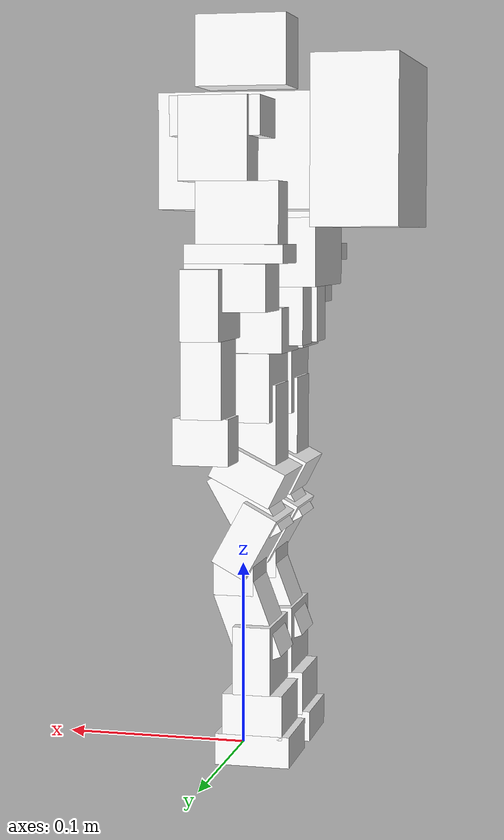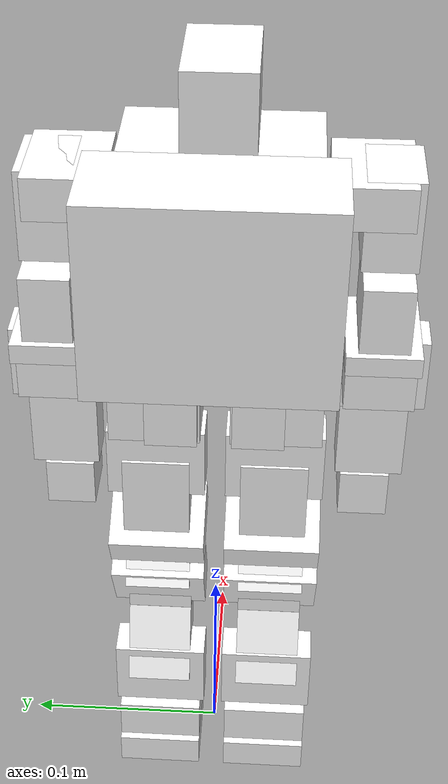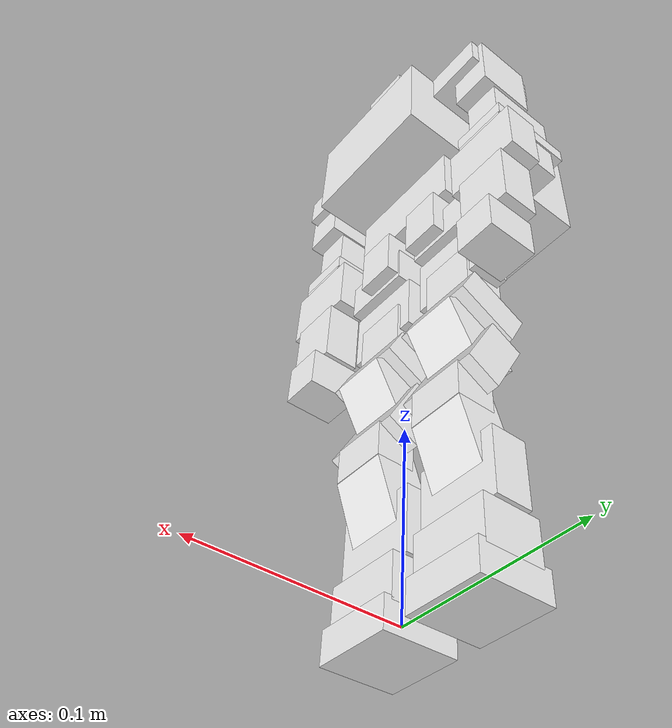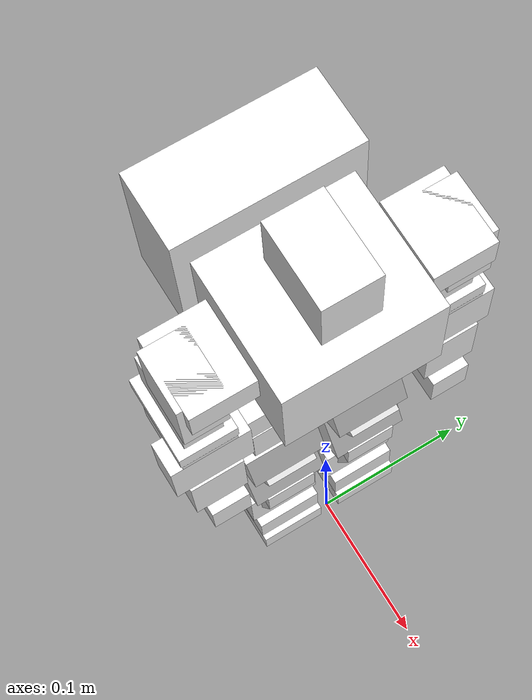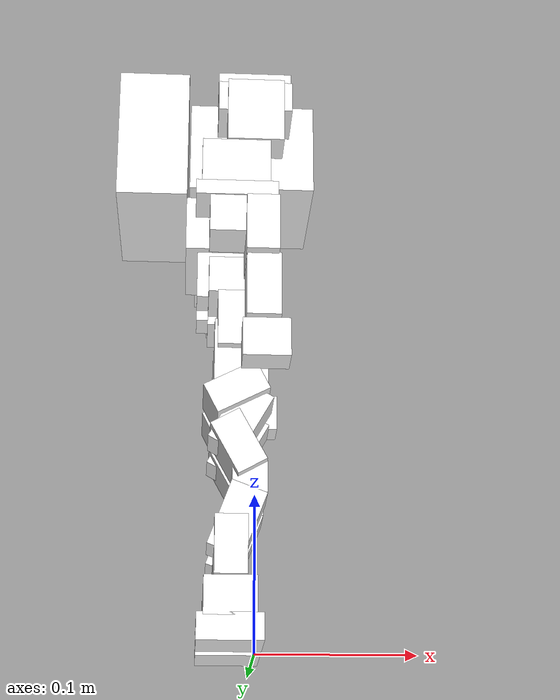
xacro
<?xml version="1.0"?>
<robot xmlns:xacro="https://www.ros.org/wiki/xacro">

    <xacro:include filename="inertial_macros.xacro"/>

    <material name="white">
        <color rgba="1 1 1 1" />
    </material>

    <material name="orange">
        <color rgba="1 0.3 0.1 1" />
    </material>

    <material name="blue">
        <color rgba="0.2 0.2 1 1" />
    </material>

    <material name="black">
        <color rgba="0 0 0 1" />
    </material>

    <link name="base_link"/>

    <!-- TORSO -->
    <joint name="torso_joint" type="fixed">
        <parent link="base_link"/>
        <child link="torso_link"/>
        <origin xyz="0 0 0.34"/>
    </joint>

    <link name="torso_link">
        <visual>
            <origin xyz="-0.00475 0 -0.01675"/>
            <geometry>
                <box size="0.0805 0.089 0.0605"/>
            </geometry>
            <material name="white"/>
        </visual>

        <visual>
            <origin xyz="-0.06925 0 -0.012"/>
            <geometry>
                <box size="0.0455 0.105 0.088"/>
            </geometry>
            <material name="white"/>
        </visual>

        <collision>
            <origin xyz="-0.00475 0 -0.01675"/>
            <geometry>
                <box size="0.0805 0.089 0.0605"/>
            </geometry>
        </collision>

        <collision>
            <origin xyz="-0.06925 0 -0.012"/>
            <geometry>
                <box size="0.0455 0.105 0.088"/>
            </geometry>
        </collision>

        <xacro:inertial_box mass="0.5" x="0.126" y="0.105" z="0.088">
            <origin xyz="-0.029 0 -0.012" rpy="0 0 0"/>
        </xacro:inertial_box>

    </link>

    <gazebo reference="torso_link">
        <material>Gazebo/White</material>
    </gazebo>

    <joint name="waist_joint" type="revolute">
        <parent link="torso_link"/>
        <child link="waist_link"/>
        <origin xyz="-0.02425 0 -0.04715"/>
        <axis xyz="0 0 1"/>
        <limit lower="-10" upper="10" effort="10" velocity="10"/>

        <dynamics damping="0.5" friction="0.2"/>
    </joint>

    <link name="waist_link">
        <visual>
            <origin xyz="0.00275 0 -0.022"/>
            <geometry>
                <box size="0.0505 0.076 0.036"/>
            </geometry>
            <material name="white"/>
        </visual>

        <collision>
            <origin xyz="0.00275 0 -0.022"/>
            <geometry>
                <box size="0.0505 0.076 0.036"/>
            </geometry>
        </collision>

        <xacro:inertial_box mass="0.5" x="0.0505" y="0.076" z="0.036">
            <origin xyz="0.00275 0 -0.022" rpy="0 0 0"/>
        </xacro:inertial_box>
    </link>

    <gazebo reference="waist_link">
        <material>Gazebo/White</material>
    </gazebo>

    <!-- HEAD -->
    <joint name="head_joint" type="revolute">
        <parent link="torso_link"/>
        <child link="head_link"/>
        <origin xyz="-0.00395 0 0.0134"/>
        <axis xyz="0 0 1"/>
        <limit lower="-2.356" upper="2.356" effort="1.3729" velocity="7.48"/>

        <dynamics damping="0.5" friction="0.2"/>
    </joint>

    <link name="head_link">
        <visual>
            <origin xyz="0.00225 0 0.0245"/>
            <geometry>
                <box size="0.0495 0.032 0.038"/>
            </geometry>
            <material name="white"/>
        </visual>

        <collision>
            <origin xyz="0.00225 0 0.0245"/>
            <geometry>
                <box size="0.0495 0.032 0.038"/>
            </geometry>
        </collision>

        <xacro:inertial_box mass="0.05" x="0.0495" y="0.032" z="0.038">
            <origin xyz="0.00225 0 0.0245"/>
        </xacro:inertial_box>
    </link>

    <gazebo reference="head_link">
        <material>Gazebo/White</material>
    </gazebo>

    <!-- LEFT ARM -->
    <joint name="left_shoulder_joint" type="revolute">
        <parent link="torso_link"/>
        <child link="left_shoulder_link"/>
        <origin xyz="-0.0041 0.04725 -0.0009"/>
        <axis xyz="0 -1 0"/>
        <limit lower="-2.356" upper="2.356" effort="1.3729" velocity="7.48"/>

        <dynamics damping="0.5" friction="0.2"/>
    </joint>

    <link name="left_shoulder_link">
        <visual>
            <origin xyz="0 0.0175 0"/>
            <geometry>
                <box size="0.0465 0.036 0.02"/>
            </geometry>
            <material name="white"/>
        </visual>

        <collision>
            <origin xyz="0 0.0175 0"/>
            <geometry>
                <box size="0.0465 0.036 0.02"/>
            </geometry>
        </collision>

        <xacro:inertial_box mass="0.5" x="0.0465" y="0.036" z="0.02">
            <origin xyz="0 0.0175 0"/>
        </xacro:inertial_box>
    </link>

     <gazebo reference="left_shoulder_link">
        <material>Gazebo/White</material>
    </gazebo>

    <joint name="left_arm_joint" type="revolute">
        <parent link="left_shoulder_link"/>
        <child link="left_arm_link"/>
        <origin xyz="0 0.02645 0"/>
        <axis xyz="1 0 0"/>
        <limit lower="-2.356" upper="2.356" effort="1.3729" velocity="7.48"/>

        <dynamics damping="0.5" friction="0.2"/>
    </joint>

    <link name="left_arm_link">
        <visual>
            <origin xyz=" 0.00025 0 -0.01125"/>
            <geometry>
                <box size="0.0355 0.025 0.0425"/>
            </geometry>
            <material name="white"/>
        </visual>

        <visual>
            <origin xyz="-0.01175 -0.00025 -0.04825"/>
            <geometry>
                <box size="0.0425 0.0225 0.0315"/>
            </geometry>
            <material name="white"/>
        </visual>

        <visual>
            <origin xyz="-0.01125 -0.00025 -0.06875"/>
            <geometry>
                <box size="0.0505 0.0335 0.0095"/>
            </geometry>
            <material name="white"/>
        </visual>

        <collision>
            <origin xyz=" 0.00025 0 -0.01125"/>
            <geometry>
                <box size="0.0355 0.025 0.0425"/>
            </geometry>
        </collision>

        <collision>
            <origin xyz="-0.01175 -0.00025 -0.04825"/>
            <geometry>
                <box size="0.0425 0.0225 0.0315"/>
            </geometry>
        </collision>

        <collision>
            <origin xyz="-0.01125 -0.00025 -0.06875"/>
            <geometry>
                <box size="0.0505 0.0335 0.0095"/>
            </geometry>
        </collision>

        <xacro:inertial_box mass="0.5" x="0.0505" y="0.0335" z="0.0835">
            <origin xyz="-0.011 0 -0.032"/>
        </xacro:inertial_box>
    </link>

    <gazebo reference="left_shoulder_link">
        <material>Gazebo/White</material>
    </gazebo>

    <joint name="left_elbow_joint" type="revolute">
        <parent link="left_arm_link"/>
        <child link="left_elbow_link"/>
        <origin xyz="0.00225 -0.00025 -0.07365"/>
        <axis xyz="0 0 1"/>
        <limit lower="-2.356" upper="2.356" effort="1.3729" velocity="7.48"/>

        <dynamics damping="0.5" friction="0.2"/>
    </joint>

    <link name="left_elbow_link">
        <visual>
            <origin xyz="-0.009 0 -0.012"/>
            <geometry>
                <box size="0.042 0.032 0.024"/>
            </geometry>
            <material name="white"/>
        </visual>

        <collision>
            <origin xyz="-0.009 0 -0.012"/>
            <geometry>
                <box size="0.042 0.032 0.024"/>
            </geometry>
        </collision>

        <xacro:inertial_box mass="0.5" x="-0.042" y="0.032" z="0.024">
            <origin xyz="-0.009 0 -0.012"/>
        </xacro:inertial_box>
    </link>

    <joint name="left_forearm_joint" type="revolute">
        <parent link="left_elbow_link"/>
        <child link="left_forearm_link"/>
        <origin xyz="0.0022 0.0 -0.0117"/>
        <axis xyz="0 -1 0"/>
        <limit lower="-2.356" upper="2.356" effort="1.3729" velocity="7.48"/>

        <dynamics damping="0.5" friction="0.2"/>
    </joint>

    <link name="left_forearm_link">
        <visual>
            <origin xyz="0 0 -0.009"/>
            <geometry>
                <box size="0.02 0.0465 0.036"/>
            </geometry>
            <material name="white"/>
        </visual>

        <visual>
            <origin xyz="0.001 0 -0.0465"/>
            <geometry>
                <box size="0.021 0.032 0.04"/>
            </geometry>
            <material name="white"/>
        </visual>

        <visual>
            <origin xyz="0.003 -0.00175 -0.0785"/>
            <geometry>
                <box size="0.029 0.0235 0.024"/>
            </geometry>
            <material name="white"/>
        </visual>

        <collision>
            <origin xyz="0 0 -0.009"/>
            <geometry>
                <box size="0.02 0.0465 0.036"/>
            </geometry>
        </collision>

        <collision>
            <origin xyz="0.001 0 -0.0465"/>
            <geometry>
                <box size="0.021 0.032 0.04"/>
            </geometry>
        </collision>

        <collision>
            <origin xyz="0.003 -0.00175 -0.0785"/>
            <geometry>
                <box size="0.029 0.0235 0.024"/>
            </geometry>
        </collision>

        <xacro:inertial_box mass="0.5" x="0.029" y="0.0465" z="0.1">
            <origin xyz="0.003 0 -0.041"/>
        </xacro:inertial_box>
    </link>

    <!-- RIGHT ARM -->
    <joint name="right_shoulder_joint" type="revolute">
        <parent link="torso_link"/>
        <child link="right_shoulder_link"/>
        <origin xyz="-0.0041 -0.04725 -0.0009"/>
        <axis xyz="0 -1 0"/>
        <limit lower="-2.356" upper="2.356" effort="1.3729" velocity="7.48"/>

        <dynamics damping="0.5" friction="0.2"/>
    </joint>

    <link name="right_shoulder_link">
        <visual>
            <origin xyz="0 -0.0175 0"/>
            <geometry>
                <box size="0.0465 0.036 0.02"/>
            </geometry>
            <material name="white"/>
        </visual>

        <collision>
            <origin xyz="0 -0.0175 0"/>
            <geometry>
                <box size="0.0465 0.036 0.02"/>
            </geometry>
        </collision>

        <xacro:inertial_box mass="0.5" x="0.0465" y="0.036" z="0.02">
            <origin xyz="0 -0.0175 0"/>
        </xacro:inertial_box>
    </link>

    <gazebo reference="right_shoulder_link">
        <material>Gazebo/White</material>
    </gazebo>

    <joint name="right_arm_joint" type="revolute">
        <parent link="right_shoulder_link"/>
        <child link="right_arm_link"/>
        <origin xyz="0 -0.02645 0"/>
        <axis xyz="-1 0 0"/>
        <limit lower="-2.356" upper="2.356" effort="1.3729" velocity="7.48"/>

        <dynamics damping="0.5" friction="0.2"/>
    </joint>

    <link name="right_arm_link">
        <visual>
            <origin xyz=" 0.00025 0 -0.01125"/>
            <geometry>
                <box size="0.0355 0.025 0.0425"/>
            </geometry>
            <material name="white"/>
        </visual>

        <visual>
            <origin xyz="-0.01175 0.00025 -0.04825"/>
            <geometry>
                <box size="0.0425 0.0225 0.0315"/>
            </geometry>
            <material name="white"/>
        </visual>

        <visual>
            <origin xyz="-0.01125 0.00025 -0.06875"/>
            <geometry>
                <box size="0.0505 0.0335 0.0095"/>
            </geometry>
            <material name="white"/>
        </visual>

        <collision>
            <origin xyz=" 0.00025 0 -0.01125"/>
            <geometry>
                <box size="0.0355 0.025 0.0425"/>
            </geometry>
        </collision>

        <collision>
            <origin xyz="-0.01175 0.00025 -0.04825"/>
            <geometry>
                <box size="0.0425 0.0225 0.0315"/>
            </geometry>
        </collision>

        <collision>
            <origin xyz="-0.01125 0.00025 -0.06875"/>
            <geometry>
                <box size="0.0505 0.0335 0.0095"/>
            </geometry>
        </collision>

        <xacro:inertial_box mass="0.5" x="0.0505" y="0.0335" z="0.0835">
            <origin xyz="-0.011 0 -0.032"/>
        </xacro:inertial_box>
    </link>

    <gazebo reference="right_arm_link">
        <material>Gazebo/White</material>
    </gazebo>

    <joint name="right_elbow_joint" type="revolute">
        <parent link="right_arm_link"/>
        <child link="right_elbow_link"/>
        <origin xyz="0.00225 0.00025 -0.07365"/>
        <axis xyz="0 0 -1"/>
        <limit lower="-2.356" upper="2.356" effort="1.3729" velocity="7.48"/>

        <dynamics damping="0.5" friction="0.2"/>
    </joint>

    <link name="right_elbow_link">
        <visual>
            <origin xyz="-0.009 0 -0.012"/>
            <geometry>
                <box size="0.042 0.032 0.024"/>
            </geometry>
            <material name="white"/>
        </visual>

        <collision>
            <origin xyz="-0.009 0 -0.012"/>
            <geometry>
                <box size="0.042 0.032 0.024"/>
            </geometry>
        </collision>

        <xacro:inertial_box mass="0.5" x="0.042" y="0.032" z="0.024">
            <origin xyz="-0.009 0 -0.012"/>
        </xacro:inertial_box>
    </link>

    <joint name="right_forearm_joint" type="revolute">
        <parent link="right_elbow_link"/>
        <child link="right_forearm_link"/>
        <origin xyz="0.0022 0.0 -0.0117"/>
        <axis xyz="0 -1 0"/>
        <limit lower="-2.356" upper="2.356" effort="1.3729" velocity="7.48"/>

        <dynamics damping="0.5" friction="0.2"/>
    </joint>

    <link name="right_forearm_link">
        <visual>
            <origin xyz="0 0 -0.009"/>
            <geometry>
                <box size="0.02 0.0465 0.036"/>
            </geometry>
            <material name="white"/>
        </visual>

        <visual>
            <origin xyz="0.001 0 -0.0465"/>
            <geometry>
                <box size="0.021 0.032 0.04"/>
            </geometry>
            <material name="white"/>
        </visual>

        <visual>
            <origin xyz="0.003 0.00175 -0.0785"/>
            <geometry>
                <box size="0.029 0.0235 0.024"/>
            </geometry>
            <material name="white"/>
        </visual>

        <collision>
            <origin xyz="0 0 -0.009"/>
            <geometry>
                <box size="0.02 0.0465 0.036"/>
            </geometry>
        </collision>

        <collision>
            <origin xyz="0.001 0 -0.0465"/>
            <geometry>
                <box size="0.021 0.032 0.04"/>
            </geometry>
        </collision>

        <collision>
            <origin xyz="0.003 0.00175 -0.0785"/>
            <geometry>
                <box size="0.029 0.0235 0.024"/>
            </geometry>
        </collision>

        <xacro:inertial_box mass="0.5" x="0.029" y="0.0465" z="0.1">
            <origin xyz="0.003 0 -0.041"/>
        </xacro:inertial_box>
    </link>

    <!-- LEFT LEG -->

    <joint name="left_hip1_joint" type="revolute">
        <parent link="waist_link"/>
        <child link="left_hip1_link"/>
        <origin xyz="0.00875 0.02145 -0.03995"/>
        <axis xyz="0 0 1"/>
        <limit lower="-2.356" upper="2.356" effort="1.3729" velocity="7.48"/>

        <dynamics damping="0.5" friction="0.2"/>
    </joint>

    <link name="left_hip1_link">
        <visual>
            <origin xyz="0 -0.0015 -0.0155"/>
            <geometry>
                <box size="0.047 0.024 0.031"/>
            </geometry>
            <material name="white"/>
        </visual>

        <collision>
            <origin xyz="0 -0.0015 -0.0155"/>
            <geometry>
                <box size="0.047 0.024 0.031"/>
            </geometry>
        </collision>

        <xacro:inertial_box mass="0.5" x="0.047" y="0.024" z="0.031">
            <origin xyz="0 -0.0015 -0.0155"/>
        </xacro:inertial_box>
    </link>

    <joint name="left_hip2_joint" type="revolute">
        <parent link="left_hip1_link"/>
        <child link="left_hip2_link"/>
        <origin xyz="0 -0.00455 -0.02235"/>
        <axis xyz="1 0 0"/>
        <limit lower="-2.356" upper="2.356" effort="1.3729" velocity="7.48"/>

        <dynamics damping="0.5" friction="0.2"/>
    </joint>

    <link name="left_hip2_link">
        <visual>
            <origin xyz="0 0.01125 -0.00025"/>
            <geometry>
                <box size="0.032 0.0425 0.0235"/>
            </geometry>
            <material name="white"/>
        </visual>

        <visual>
            <origin xyz="0 0.01125 -0.03"/>
            <geometry>
                <box size="0.02 0.0465 0.036"/>
            </geometry>
            <material name="white"/>
        </visual>

        <collision>
            <origin xyz="0 0.01125 -0.00025"/>
            <geometry>
                <box size="0.032 0.0425 0.0235"/>
            </geometry>
        </collision>

        <collision>
            <origin xyz="0 0.01125 -0.03"/>
            <geometry>
                <box size="0.02 0.0465 0.036"/>
            </geometry>
        </collision>

        <xacro:inertial_box mass="0.5" x="0.032" y="0.0465" z="0.0595">
            <origin xyz="0 0.01125 -0.018"/>
        </xacro:inertial_box>
    </link>

    <joint name="left_leg_joint" type="revolute">
        <parent link="left_hip2_link"/>
        <child link="left_leg_link"/>
        <axis xyz="0 -1 0"/>
        <origin xyz="-0.0008 0.0113 -0.0387"/>
        <limit lower="-2.356" upper="2.356" effort="1.3729" velocity="7.48"/>

        <dynamics damping="0.5" friction="0.2"/>
    </joint>

    <link name="left_leg_link">
        <visual>
            <origin xyz="0.00075 0 -0.011"/>
            <geometry>
                <box size="0.0235 0.032 0.042"/>
            </geometry>
            <material name="white"/>
        </visual>

        <visual>
            <origin xyz="0.006 0.0 -0.054" rpy="2.0887992 -0.0000101 1.5708007"/>
            <geometry>
                <box size="0.032 0.042 0.0225"/>
            </geometry>
            <material name="white"/>
        </visual>

        <visual>
            <origin xyz="0.003 0 -0.037" rpy="2.6707995 -0.0000107 1.5708003"/>
            <geometry>
                <box size="0.0465 0.036 0.02"/>
            </geometry>
            <material name="white"/>
        </visual>

        <collision>
            <origin xyz="0.00075 0 -0.011"/>
            <geometry>
                <box size="0.0235 0.032 0.042"/>
            </geometry>
        </collision>

        <collision>
            <origin xyz="0.006 0.0 -0.054" rpy="2.0887992 -0.0000101 1.5708007"/>
            <geometry>
                <box size="0.032 0.042 0.0225"/>
            </geometry>
        </collision>

        <collision>
            <origin xyz="0.003 0 -0.037" rpy="2.6707995 -0.0000107 1.5708003"/>
            <geometry>
                <box size="0.0465 0.036 0.02"/>
            </geometry>
        </collision>

        <xacro:inertial_box mass="0.5" x="0.032" y="0.0465" z="0.07">
            <origin xyz="0 0 -0.044"/>
        </xacro:inertial_box>
    </link>

    <joint name="left_knee_joint" type="revolute">
        <parent link="left_leg_link"/>
        <child link="left_knee_link"/>
        <axis xyz="0 1 0"/>
        <origin xyz="0.00015 0.0 -0.06375"/>
        <limit lower="-2.356" upper="2.356" effort="1.3729" velocity="7.48"/>

        <dynamics damping="0.5" friction="0.2"/>
    </joint>

    <link name="left_knee_link">
        <visual>
            <origin xyz="0.00425 0 -0.008" rpy="1.0707999 -0.000011 1.5707994"/>
            <geometry>
                <box size="0.0465 0.036 0.02"/>
            </geometry>
            <material name="white"/>
        </visual>

        <visual>
            <origin xyz="0.0115 0 -0.028"/>
            <geometry>
                <box size="0.0215 0.032 0.02"/>
            </geometry>
            <material name="white"/>
        </visual>

        <visual>
            <origin xyz="0.004 0.0 -0.054" rpy="1.9307994 -0.0000108 1.5708006"/>
            <geometry>
                <box size="0.032 0.042 0.023"/>
            </geometry>
            <material name="white"/>
        </visual>

        <collision>
            <origin xyz="0.00425 0 -0.008" rpy="1.0707999 -0.000011 1.5707994"/>
            <geometry>
                <box size="0.0465 0.036 0.02"/>
            </geometry>
        </collision>

        <collision>
            <origin xyz="0.0115 0 -0.028"/>
            <geometry>
                <box size="0.0215 0.032 0.02"/>
            </geometry>
        </collision>

        <collision>
            <origin xyz="0.004 0.0 -0.054" rpy="1.9307994 -0.0000108 1.5708006"/>
            <geometry>
                <box size="0.032 0.042 0.023"/>
            </geometry>
        </collision>

        <xacro:inertial_box mass="0.5" x="0.032" y="0.0465" z="0.07">
            <origin xyz="0 0 -0.044"/>
        </xacro:inertial_box>
    </link>

    <joint name="left_ankle_joint" type="revolute">
        <parent link="left_knee_link"/>
        <child link="left_ankle_link"/>
        <axis xyz="0 1 0"/>
        <origin xyz="0.0003 -0.0002 -0.0643"/>
        <limit lower="-2.356" upper="2.356" effort="1.3729" velocity="7.48"/>

        <dynamics damping="0.5" friction="0.2"/>
    </joint>

    <link name="left_ankle_link">
        <visual>
            <origin xyz="0 0 -0.037"/>
            <geometry>
                <box size="0.032 0.0425 0.0235"/>
            </geometry>
            <material name="white"/>
        </visual>

        <visual>
            <origin xyz="0 0 -0.007"/>
            <geometry>
                <box size="0.02 0.0465 0.036"/>
            </geometry>
            <material name="white"/>
        </visual>

        <collision>
            <origin xyz="0 0 -0.037"/>
            <geometry>
                <box size="0.032 0.0425 0.0235"/>
            </geometry>
        </collision>

        <collision>
            <origin xyz="0 0 -0.007"/>
            <geometry>
                <box size="0.02 0.0465 0.036"/>
            </geometry>
        </collision>

        <xacro:inertial_box mass="0.5" x="0.032" y="0.0465" z="0.0595">
            <origin xyz="0 0 -0.019"/>
        </xacro:inertial_box>
    </link>

    <joint name="left_foot_joint" type="revolute">
        <parent link="left_ankle_link"/>
        <child link="left_foot_link"/>
        <axis xyz="1 0 0"/>
        <origin xyz="0 -0.01125 -0.037"/>
        <limit lower="-2.356" upper="2.356" effort="1.3729" velocity="7.48"/>

        <dynamics damping="0.5" friction="0.2"/>
    </joint>

    <link name="left_foot_link">
        <visual>
            <origin xyz="0 0.01125 -0.01825"/>
            <geometry>
                <box size="0.04 0.0425 0.0165"/>
            </geometry>
            <material name="white"/>
        </visual>

        <collision>
           <origin xyz="0 0.01125 -0.01825"/>
            <geometry>
                <box size="0.04 0.0425 0.0165"/>
            </geometry>
        </collision>

        <xacro:inertial_box mass="0.5" x="0.04" y="0.0425" z="0.0165">
            <origin xyz="0 0.01125 -0.01825"/>
        </xacro:inertial_box>
    </link>

    <!-- RIGHT LEG -->

    <joint name="right_hip1_joint" type="revolute">
        <parent link="waist_link"/>
        <child link="right_hip1_link"/>
        <origin xyz="0.00875 -0.02145 -0.03995"/>
        <axis xyz="0 0 -1"/>
        <limit lower="-2.356" upper="2.356" effort="1.3729" velocity="7.48"/>

        <dynamics damping="0.5" friction="0.2"/>
    </joint>

    <link name="right_hip1_link">
        <visual>
            <origin xyz="0 0.0015 -0.0155"/>
            <geometry>
                <box size="0.047 0.024 0.031"/>
            </geometry>
            <material name="white"/>
        </visual>

        <collision>
            <origin xyz="0 0.0015 -0.0155"/>
            <geometry>
                <box size="0.047 0.024 0.031"/>
            </geometry>
        </collision>

        <xacro:inertial_box mass="0.5" x="0.047" y="0.024" z="0.031">
            <origin xyz="0 0.0015 -0.0155"/>
        </xacro:inertial_box>
    </link>

    <joint name="right_hip2_joint" type="revolute">
        <parent link="right_hip1_link"/>
        <child link="right_hip2_link"/>
        <origin xyz="0 0.00455 -0.02235"/>
        <axis xyz="-1 0 0"/>
        <limit lower="-2.356" upper="2.356" effort="1.3729" velocity="7.48"/>

        <dynamics damping="0.5" friction="0.2"/>
    </joint>

    <link name="right_hip2_link">
        <visual>
            <origin xyz="0 -0.01125 -0.00025"/>
            <geometry>
                <box size="0.032 0.0425 0.0235"/>
            </geometry>
            <material name="white"/>
        </visual>

        <visual>
            <origin xyz="0 -0.01125 -0.03"/>
            <geometry>
                <box size="0.02 0.0465 0.036"/>
            </geometry>
            <material name="white"/>
        </visual>

        <collision>
            <origin xyz="0 -0.01125 -0.00025"/>
            <geometry>
                <box size="0.032 0.0425 0.0235"/>
            </geometry>
        </collision>

        <collision>
            <origin xyz="0 -0.01125 -0.03"/>
            <geometry>
                <box size="0.02 0.0465 0.036"/>
            </geometry>
        </collision>

        <xacro:inertial_box mass="0.5" x="0.032" y="0.0465" z="0.0595">
            <origin xyz="0 -0.01125 -0.018"/>
        </xacro:inertial_box>
    </link>

    <joint name="right_leg_joint" type="revolute">
        <parent link="right_hip2_link"/>
        <child link="right_leg_link"/>
        <axis xyz="0 -1 0"/>
        <origin xyz="-0.0008 -0.0113 -0.0387"/>
        <limit lower="-2.356" upper="2.356" effort="1.3729" velocity="7.48"/>

        <dynamics damping="0.5" friction="0.2"/>
    </joint>

    <link name="right_leg_link">
        <visual>
            <origin xyz="0.00075 0 -0.011"/>
            <geometry>
                <box size="0.0235 0.032 0.042"/>
            </geometry>
            <material name="white"/>
        </visual>

        <visual>
            <origin xyz="0.006 0.0 -0.054" rpy="2.0887992 -0.0000101 1.5708007"/>
            <geometry>
                <box size="0.032 0.042 0.0225"/>
            </geometry>
            <material name="white"/>
        </visual>

        <visual>
            <origin xyz="0.003 0 -0.037" rpy="2.6707995 -0.0000107 1.5708003"/>
            <geometry>
                <box size="0.0465 0.036 0.02"/>
            </geometry>
            <material name="white"/>
        </visual>

        <collision>
            <origin xyz="0.00075 0 -0.011"/>
            <geometry>
                <box size="0.0235 0.032 0.042"/>
            </geometry>
        </collision>

        <collision>
            <origin xyz="0.006 0.0 -0.054" rpy="2.0887992 -0.0000101 1.5708007"/>
            <geometry>
                <box size="0.032 0.042 0.0225"/>
            </geometry>
        </collision>

        <collision>
            <origin xyz="0.003 0 -0.037" rpy="2.6707995 -0.0000107 1.5708003"/>
            <geometry>
                <box size="0.0465 0.036 0.02"/>
            </geometry>
        </collision>

        <xacro:inertial_box mass="0.5" x="0.032" y="0.0465" z="0.07">
            <origin xyz="0 0 -0.044"/>
        </xacro:inertial_box>
    </link>

    <joint name="right_knee_joint" type="revolute">
        <parent link="right_leg_link"/>
        <child link="right_knee_link"/>
        <axis xyz="0 1 0"/>
        <origin xyz="0.00015 0.0 -0.06375"/>
        <limit lower="-2.356" upper="2.356" effort="1.3729" velocity="7.48"/>

        <dynamics damping="0.5" friction="0.2"/>
    </joint>

    <link name="right_knee_link">
        <visual>
            <origin xyz="0.00425 0 -0.008" rpy="1.0707999 -0.000011 1.5707994"/>
            <geometry>
                <box size="0.0465 0.036 0.02"/>
            </geometry>
            <material name="white"/>
        </visual>

        <visual>
            <origin xyz="0.0115 0 -0.028"/>
            <geometry>
                <box size="0.0215 0.032 0.02"/>
            </geometry>
            <material name="white"/>
        </visual>

        <visual>
            <origin xyz="0.004 0.0 -0.054" rpy="1.9307994 -0.0000108 1.5708006"/>
            <geometry>
                <box size="0.032 0.042 0.023"/>
            </geometry>
            <material name="white"/>
        </visual>

        <collision>
            <origin xyz="0.00425 0 -0.008" rpy="1.0707999 -0.000011 1.5707994"/>
            <geometry>
                <box size="0.0465 0.036 0.02"/>
            </geometry>
        </collision>

        <collision>
            <origin xyz="0.0115 0 -0.028"/>
            <geometry>
                <box size="0.0215 0.032 0.02"/>
            </geometry>
        </collision>

        <collision>
            <origin xyz="0.004 0.0 -0.054" rpy="1.9307994 -0.0000108 1.5708006"/>
            <geometry>
                <box size="0.032 0.042 0.023"/>
            </geometry>
        </collision>

        <xacro:inertial_box mass="0.5" x="0.032" y="0.0465" z="0.07">
            <origin xyz="0 0 -0.044"/>
        </xacro:inertial_box>
    </link>

    <joint name="right_ankle_joint" type="revolute">
        <parent link="right_knee_link"/>
        <child link="right_ankle_link"/>
        <axis xyz="0 1 0"/>
        <origin xyz="0.0003 0.0002 -0.0643"/>
        <limit lower="-2.356" upper="2.356" effort="1.3729" velocity="7.48"/>

        <dynamics damping="0.5" friction="0.2"/>
    </joint>

    <link name="right_ankle_link">
        <visual>
            <origin xyz="0 0 -0.037"/>
            <geometry>
                <box size="0.032 0.0425 0.0235"/>
            </geometry>
            <material name="white"/>
        </visual>

        <visual>
            <origin xyz="0 0 -0.007"/>
            <geometry>
                <box size="0.02 0.0465 0.036"/>
            </geometry>
            <material name="white"/>
        </visual>

        <collision>
            <origin xyz="0 0 -0.037"/>
            <geometry>
                <box size="0.032 0.0425 0.0235"/>
            </geometry>
        </collision>

        <collision>
            <origin xyz="0 0 -0.007"/>
            <geometry>
                <box size="0.02 0.0465 0.036"/>
            </geometry>
        </collision>

        <xacro:inertial_box mass="0.5" x="0.032" y="0.0465" z="0.0595">
            <origin xyz="0 0 -0.019"/>
        </xacro:inertial_box>
    </link>

    <joint name="right_foot_joint" type="revolute">
        <parent link="right_ankle_link"/>
        <child link="right_foot_link"/>
        <axis xyz="-1 0 0"/>
        <origin xyz="0 0.01125 -0.037"/>
        <limit lower="-2.356" upper="2.356" effort="1.3729" velocity="7.48"/>

        <dynamics damping="0.5" friction="0.2"/>
    </joint>

    <link name="right_foot_link">
        <visual>
            <origin xyz="0 -0.01125 -0.01825"/>
            <geometry>
                <box size="0.04 0.0425 0.0165"/>
            </geometry>
            <material name="white"/>
        </visual>

        <collision>
            <origin xyz="0 -0.01125 -0.01825"/>
            <geometry>
                <box size="0.04 0.0425 0.0165"/>
            </geometry>
        </collision>

        <xacro:inertial_box mass="0.5" x="0.04" y="0.0425" z="0.0165">
            <origin xyz="0 -0.01125 -0.01825"/>
        </xacro:inertial_box>
    </link>

</robot>
